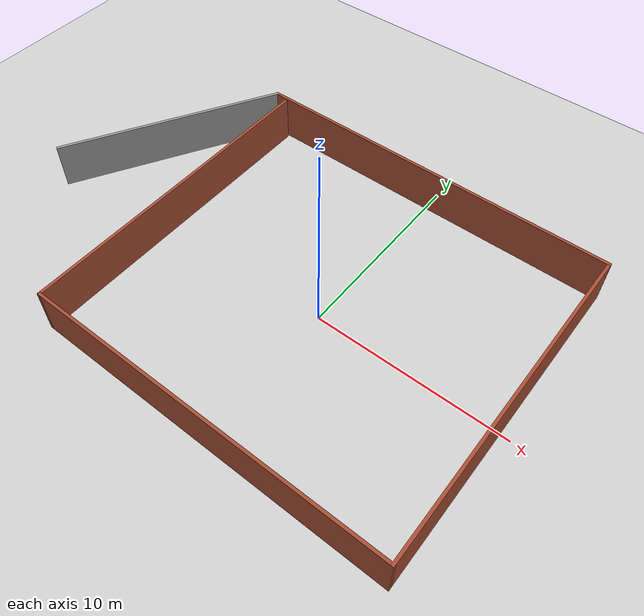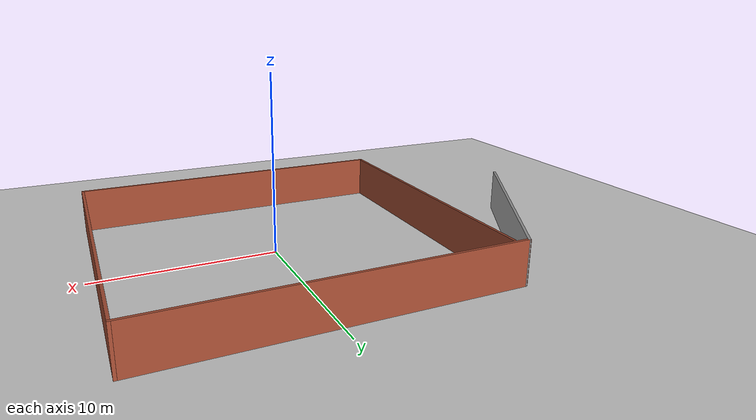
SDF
<sdf version="1.7">
 <world name="default">
  <light name="sun" type="directional">
   <pose>0 0 10 0 -0 0</pose>
   <diffuse>0.8 0.8 0.8 1</diffuse>
   <specular>0.2 0.2 0.2 1</specular>
   <attenuation>
    <range>1000</range>
    <constant>0.9</constant>
    <linear>0.01</linear>
    <quadratic>0.001</quadratic>
   </attenuation>
   <direction>-0.5 0.1 -0.9</direction>
   <spot><inner_angle>0</inner_angle><outer_angle>0</outer_angle><falloff>0</falloff></spot>
  </light>
  <model name="ground_plane">
   <static>1</static>
   <link name="link">
    <collision name="collision">
     <geometry><plane><normal>0 0 1</normal><size>100 100</size></plane></geometry>
     <surface><friction><ode><mu>100</mu><mu2>50</mu2></ode></friction></surface>
    </collision>
    <visual name="visual">
     <cast_shadows>0</cast_shadows>
     <geometry><plane><normal>0 0 1</normal><size>100 100</size></plane></geometry>
     <material>
      <script><uri>file://media/materials/scripts/gazebo.material</uri><name>Gazebo/Grey</name></script>
     </material>
    </visual>
   </link>
  </model>
  <gravity>0 0 -9.8</gravity>
  <magnetic_field>6e-06 2.3e-05 -4.2e-05</magnetic_field>
  <atmosphere type="adiabatic"/>
  <physics type="ode">
   <max_step_size>0.001</max_step_size>
   <real_time_factor>1</real_time_factor>
   <real_time_update_rate>1000</real_time_update_rate>
  </physics>
  <scene><ambient>0.4 0.4 0.4 1</ambient><background>0.7 0.7 0.7 1</background><shadows>1</shadows></scene>
  <audio><device>default</device></audio>
  <spherical_coordinates>
   <surface_model>EARTH_WGS84</surface_model>
   <latitude_deg>0</latitude_deg>
   <longitude_deg>0</longitude_deg>
   <elevation>0</elevation>
   <heading_deg>0</heading_deg>
  </spherical_coordinates>
  <model name="wall">
   <pose>-3.22199 0.548987 0 0 -0 0</pose>
   <link name="Wall_3">
    <collision name="Wall_3_Collision">
     <geometry><box><size>12 0.15 2.5</size></box></geometry>
     <pose>0 0 1.25 0 -0 0</pose>
    </collision>
    <visual name="Wall_3_Visual">
     <pose>0 0 1.25 0 -0 0</pose>
     <geometry><box><size>12 0.15 2.5</size></box></geometry>
     <material>
      <script><uri>file://media/materials/scripts/gazebo.material</uri><name>Gazebo/Grey</name></script>
      <ambient>1 1 1 1</ambient>
     </material>
     <meta><layer>0</layer></meta>
    </visual>
    <pose>-9.66127 3.28007 0 0 -0 1.0472</pose>
   </link>
   <link name="Wall_4">
    <collision name="Wall_4_Collision">
     <geometry><box><size>19.5 0.15 2.5</size></box></geometry>
     <pose>0 0 1.25 0 -0 0</pose>
    </collision>
    <visual name="Wall_4_Visual">
     <pose>0 0 1.25 0 -0 0</pose>
     <geometry><box><size>19.5 0.15 2.5</size></box></geometry>
     <material>
      <script><uri>file://media/materials/scripts/gazebo.material</uri><name>Gazebo/Bricks</name></script>
      <ambient>1 1 1 1</ambient>
     </material>
     <meta><layer>0</layer></meta>
    </visual>
    <pose>2.97623 8.41127 0 0 -0 0</pose>
   </link>
   <link name="Wall_5">
    <collision name="Wall_5_Collision">
     <geometry><box><size>17 0.15 2.5</size></box></geometry>
     <pose>0 0 1.25 0 -0 0</pose>
    </collision>
    <visual name="Wall_5_Visual">
     <pose>0 0 1.25 0 -0 0</pose>
     <geometry><box><size>17 0.15 2.5</size></box></geometry>
     <material>
      <script><uri>file://media/materials/scripts/gazebo.material</uri><name>Gazebo/Bricks</name></script>
      <ambient>1 1 1 1</ambient>
     </material>
     <meta><layer>0</layer></meta>
    </visual>
    <pose>12.6512 -0.013726 0 0 -0 -1.5708</pose>
   </link>
   <link name="Wall_6">
    <collision name="Wall_6_Collision">
     <geometry><box><size>18.75 0.15 2.5</size></box></geometry>
     <pose>0 0 1.25 0 -0 0</pose>
    </collision>
    <visual name="Wall_6_Visual">
     <pose>0 0 1.25 0 -0 0</pose>
     <geometry><box><size>18.75 0.15 2.5</size></box></geometry>
     <material>
      <script><uri>file://media/materials/scripts/gazebo.material</uri><name>Gazebo/Bricks</name></script>
      <ambient>1 1 1 1</ambient>
     </material>
     <meta><layer>0</layer></meta>
    </visual>
    <pose>3.35123 -8.43873 0 0 -0 3.14159</pose>
   </link>
   <link name="Wall_7">
    <collision name="Wall_7_Collision">
     <geometry><box><size>16.75 0.15 2.5</size></box></geometry>
     <pose>0 0 1.25 0 -0 0</pose>
    </collision>
    <visual name="Wall_7_Visual">
     <pose>0 0 1.25 0 -0 0</pose>
     <geometry><box><size>16.75 0.15 2.5</size></box></geometry>
     <material>
      <script><uri>file://media/materials/scripts/gazebo.material</uri><name>Gazebo/Bricks</name></script>
      <ambient>1 1 1 1</ambient>
     </material>
     <meta><layer>0</layer></meta>
    </visual>
    <pose>-5.94877 -0.138726 0 0 -0 1.5708</pose>
   </link>
   <static>1</static>
  </model>
 </world>
</sdf>
